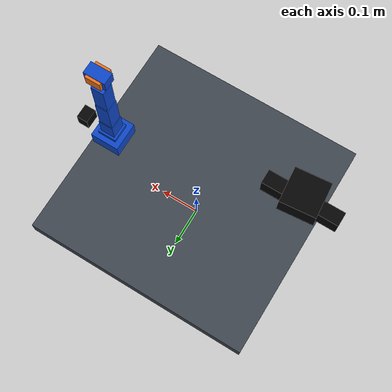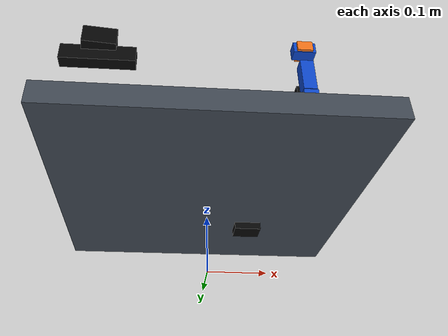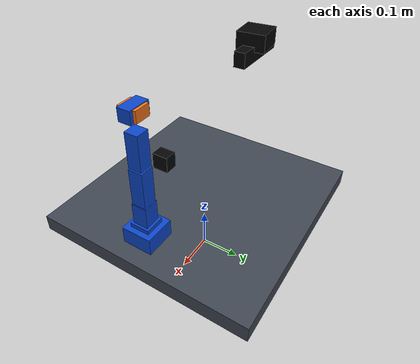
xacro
<?xml version="1.0"?>
<robot name="roscar_sim" xmlns:xacro="http://ros.org/wiki/xacro">
  <xacro:include filename="$(find roscar_description)/urdf/roscar_dofbot_temp.urdf.xacro"/>

  <gazebo>
    <static>true</static>
  </gazebo>

  <gazebo reference="base_link">
    <material>Gazebo/Grey</material>
  </gazebo>

  <gazebo reference="laser_link">
    <sensor name="roscar_laser" type="ray">
      <always_on>true</always_on>
      <visualize>true</visualize>
      <update_rate>15</update_rate>
      <ray>
        <scan>
          <horizontal>
            <samples>720</samples>
            <resolution>1</resolution>
            <min_angle>-3.14159265</min_angle>
            <max_angle>3.14159265</max_angle>
          </horizontal>
        </scan>
        <range>
          <min>0.12</min>
          <max>8.0</max>
          <resolution>0.01</resolution>
        </range>
        <noise>
          <type>gaussian</type>
          <mean>0.0</mean>
          <stddev>0.005</stddev>
        </noise>
      </ray>
      <plugin name="roscar_laser_plugin" filename="libgazebo_ros_ray_sensor.so">
        <ros><remapping>~/out:=/scan_raw</remapping></ros>
        <output_type>sensor_msgs/LaserScan</output_type>
        <frame_name>laser_link</frame_name>
      </plugin>
    </sensor>
  </gazebo>

  <!-- Entity motion is driven by sim_base_controller.py.  The stock planar
       plugin allowed the tall manipulator to torque the chassis out of the
       2-D plane, so it is deliberately not loaded. -->
  <gazebo reference="link1"><gravity>false</gravity></gazebo>
  <gazebo reference="link2"><gravity>false</gravity></gazebo>
  <gazebo reference="link3"><gravity>false</gravity></gazebo>
  <gazebo reference="link4"><gravity>false</gravity></gazebo>
  <gazebo reference="link5"><gravity>false</gravity></gazebo>
</robot>

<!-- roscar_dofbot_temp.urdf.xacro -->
<robot name="roscar_dofbot_temp" xmlns:xacro="http://ros.org/wiki/xacro">
  <!-- ROS coordinate convention: X forward, Y left, Z up. -->

  <material name="body_gray">
    <color rgba="0.25 0.28 0.32 1.0"/>
  </material>
  <material name="sensor_black">
    <color rgba="0.02 0.02 0.02 1.0"/>
  </material>
  <material name="arm_blue">
    <color rgba="0.05 0.28 0.80 1.0"/>
  </material>
  <material name="tool_orange">
    <color rgba="0.95 0.45 0.10 1.0"/>
  </material>

  <xacro:macro name="box_link" params="name size material">
    <link name="${name}">
      <visual>
        <origin xyz="0 0 0" rpy="0 0 0"/>
        <geometry>
          <box size="${size}"/>
        </geometry>
        <material name="${material}"/>
      </visual>
      <collision>
        <origin xyz="0 0 0" rpy="0 0 0"/>
        <geometry>
          <box size="${size}"/>
        </geometry>
      </collision>
      <inertial>
        <mass value="0.1"/>
        <origin xyz="0 0 0" rpy="0 0 0"/>
        <inertia ixx="0.001" ixy="0" ixz="0" iyy="0.001" iyz="0" izz="0.001"/>
      </inertial>
    </link>
  </xacro:macro>

  <link name="base_footprint"/>

  <xacro:box_link name="base_link" size="0.55 0.54 0.04" material="body_gray"/>
  <joint name="base_footprint_to_base_link" type="fixed">
    <parent link="base_footprint"/>
    <child link="base_link"/>
    <origin xyz="0 0 0.1567" rpy="0 0 0"/>
  </joint>

  <xacro:box_link name="imu_link" size="0.045 0.035 0.012" material="sensor_black"/>
  <joint name="base_link_to_imu_link" type="fixed">
    <parent link="base_link"/>
    <child link="imu_link"/>
    <origin xyz="0.070 0 -0.0767" rpy="0 0 0"/>
  </joint>

  <xacro:box_link name="n300_imu_link" size="0.045 0.035 0.012" material="sensor_black"/>
  <joint name="base_link_to_n300_imu_link" type="fixed">
    <parent link="base_link"/>
    <child link="n300_imu_link"/>
    <origin xyz="-0.170 0 0" rpy="0 0 0"/>
  </joint>

  <xacro:box_link name="laser_link" size="0.075 0.075 0.045" material="sensor_black"/>
  <joint name="base_link_to_laser_link" type="fixed">
    <parent link="base_link"/>
    <child link="laser_link"/>
    <!-- 2026-07-24 N10Plus effective LaserScan zero: +5.293145 deg. -->
    <origin xyz="-0.235 0 0.350" rpy="0 0 0.092382808"/>
  </joint>

  <xacro:box_link name="astra_link" size="0.165 0.030 0.040" material="sensor_black"/>
  <joint name="base_link_to_astra_link" type="fixed">
    <parent link="base_link"/>
    <child link="astra_link"/>
    <origin xyz="-0.235 0 0.320" rpy="0 0 0"/>
  </joint>

  <link name="astra_depth_frame"/>
  <joint name="astra_link_to_depth_frame" type="fixed">
    <parent link="astra_link"/>
    <child link="astra_depth_frame"/>
    <origin xyz="0 0 0" rpy="0 0 0"/>
  </joint>

  <link name="astra_depth_optical_frame"/>
  <joint name="astra_depth_to_optical" type="fixed">
    <parent link="astra_depth_frame"/>
    <child link="astra_depth_optical_frame"/>
    <!-- REP-103 camera optical frame: +X right, +Y down, +Z forward. -->
    <origin xyz="0 0 0" rpy="-1.57079632679 0 -1.57079632679"/>
  </joint>

  <link name="astra_color_frame"/>
  <joint name="astra_link_to_color_frame" type="fixed">
    <parent link="astra_link"/>
    <child link="astra_color_frame"/>
    <origin xyz="0 0 0" rpy="0 0 0"/>
  </joint>

  <link name="astra_color_optical_frame"/>
  <joint name="astra_color_to_optical" type="fixed">
    <parent link="astra_color_frame"/>
    <child link="astra_color_optical_frame"/>
    <origin xyz="0 0 0" rpy="-1.57079632679 0 -1.57079632679"/>
  </joint>

  <xacro:box_link name="arm_base_link" size="0.070 0.070 0.040" material="arm_blue"/>
  <joint name="base_link_to_arm_base_link" type="fixed">
    <parent link="base_link"/>
    <child link="arm_base_link"/>
    <origin xyz="0.223 0 0.0775" rpy="0 0 0"/>
  </joint>

  <xacro:box_link name="link1" size="0.045 0.045 0.060" material="arm_blue"/>
  <joint name="joint1" type="revolute">
    <parent link="arm_base_link"/>
    <child link="link1"/>
    <origin xyz="0 0 0" rpy="0 0 0"/>
    <axis xyz="0 0 1"/>
    <limit lower="-1.5708" upper="1.5708" effort="8.0" velocity="1.5"/>
  </joint>

  <xacro:box_link name="link2" size="0.085 0.035 0.035" material="arm_blue"/>
  <joint name="joint2" type="revolute">
    <parent link="link1"/>
    <child link="link2"/>
    <origin xyz="0 0 0.0382" rpy="0 1.5708 0"/>
    <axis xyz="0 0 1"/>
    <limit lower="-1.5708" upper="1.5708" effort="8.0" velocity="1.5"/>
  </joint>

  <xacro:box_link name="link3" size="0.085 0.032 0.032" material="arm_blue"/>
  <joint name="joint3" type="revolute">
    <parent link="link2"/>
    <child link="link3"/>
    <origin xyz="-0.085 0 0" rpy="0 0 0"/>
    <axis xyz="0 0 1"/>
    <limit lower="-1.5708" upper="1.5708" effort="8.0" velocity="1.5"/>
  </joint>

  <xacro:box_link name="link4" size="0.080 0.030 0.030" material="arm_blue"/>
  <joint name="joint4" type="revolute">
    <parent link="link3"/>
    <child link="link4"/>
    <origin xyz="-0.085 0 0" rpy="0 0 0"/>
    <axis xyz="0 0 1"/>
    <limit lower="-1.5708" upper="1.5708" effort="8.0" velocity="1.5"/>
  </joint>

  <xacro:box_link name="wrist_camera_link" size="0.030 0.030 0.024" material="sensor_black"/>
  <joint name="link4_to_wrist_camera_link" type="fixed">
    <parent link="link4"/>
    <child link="wrist_camera_link"/>
    <origin xyz="0 0.0585 0" rpy="0 0 0"/>
  </joint>

  <link name="wrist_color_optical_frame"/>
  <joint name="wrist_camera_to_color_optical" type="fixed">
    <parent link="wrist_camera_link"/>
    <child link="wrist_color_optical_frame"/>
    <origin xyz="0 0 0" rpy="-1.5708 0 -1.5708"/>
  </joint>

  <link name="wrist_depth_optical_frame"/>
  <joint name="wrist_camera_to_depth_optical" type="fixed">
    <parent link="wrist_camera_link"/>
    <child link="wrist_depth_optical_frame"/>
    <origin xyz="0 0 0" rpy="-1.5708 0 -1.5708"/>
  </joint>

  <xacro:box_link name="link5" size="0.050 0.028 0.028" material="arm_blue"/>
  <joint name="joint5" type="revolute">
    <parent link="link4"/>
    <child link="link5"/>
    <origin xyz="-0.080 0 0" rpy="0 -1.5708 0"/>
    <axis xyz="0 0 1"/>
    <limit lower="-1.5708" upper="3.1416" effort="8.0" velocity="1.5"/>
  </joint>

  <xacro:box_link name="gripper_base_link" size="0.035 0.040 0.025" material="tool_orange"/>
  <joint name="link5_to_gripper_base_link" type="fixed">
    <parent link="link5"/>
    <child link="gripper_base_link"/>
    <origin xyz="0 0 0" rpy="0 0 0"/>
  </joint>

  <link name="tool0"/>
  <joint name="gripper_base_to_tool0" type="fixed">
    <parent link="gripper_base_link"/>
    <child link="tool0"/>
    <origin xyz="0.0986 0 0" rpy="0 0 0"/>
  </joint>

  <link name="tool0_open_ref"/>
  <joint name="gripper_base_to_tool0_open_ref" type="fixed">
    <parent link="gripper_base_link"/>
    <child link="tool0_open_ref"/>
    <origin xyz="0.070 0 0" rpy="0 0 0"/>
  </joint>

  <link name="tool0_close_ref"/>
  <joint name="gripper_base_to_tool0_close_ref" type="fixed">
    <parent link="gripper_base_link"/>
    <child link="tool0_close_ref"/>
    <origin xyz="0.1086 0 0" rpy="0 0 0"/>
  </joint>
</robot>
